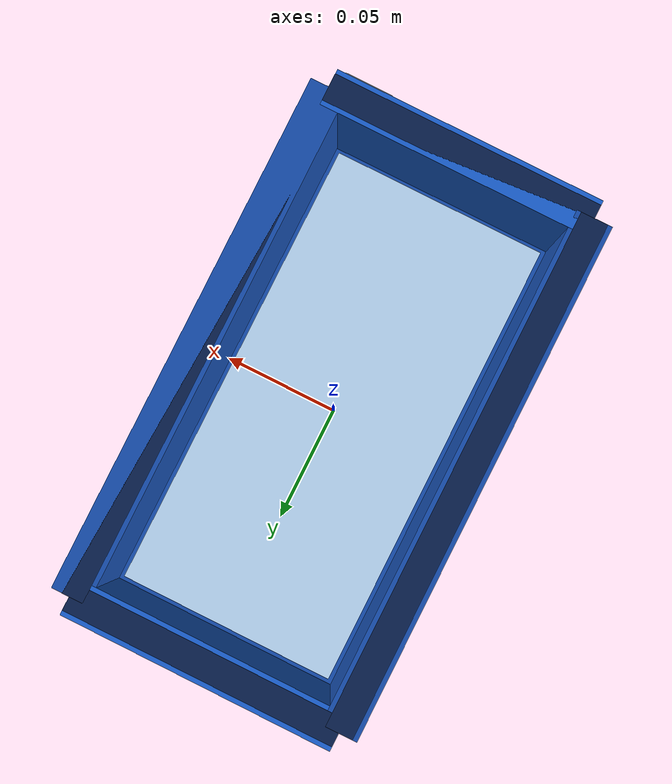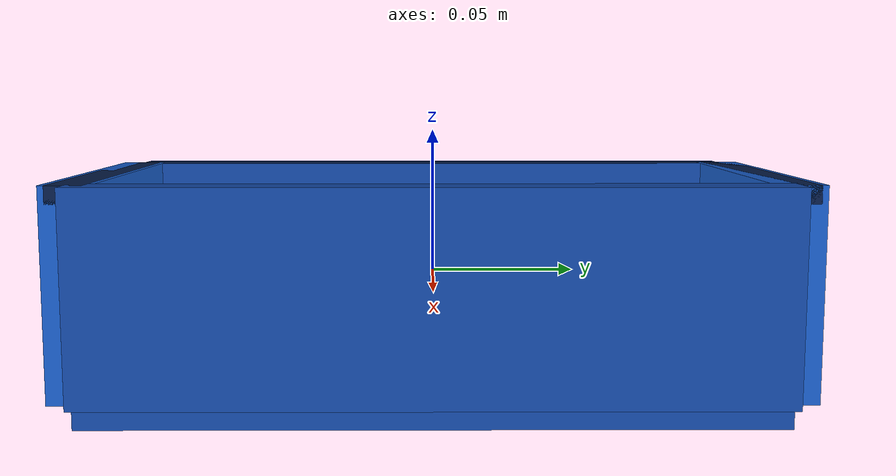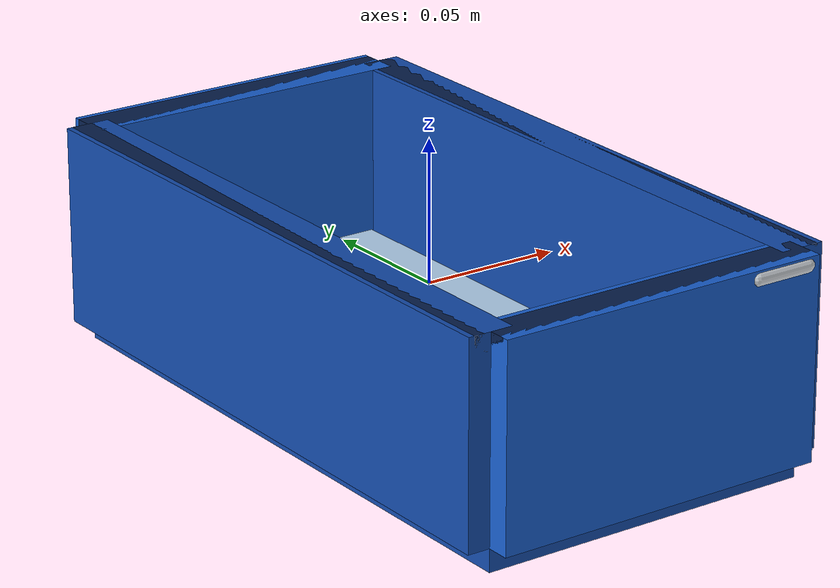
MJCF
<mujoco model="vla82_vla82_051__aux_05">
  <compiler angle="radian"/>
  <asset>
    <texture name="source_texture" type="2d" file="source_texture.png"/>
    <material name="source_material" texture="source_texture" rgba="1 1 1 1"/>
  </asset>
  <default>
    <default class="visual"><geom contype="0" conaffinity="0" group="1"/></default>
    <default class="collision"><geom contype="1" conaffinity="1" group="0" density="300" friction="0.82 0.008 0.0003" solref="0.02 1" solimp="0.9 0.95 0.001"/></default>
    <default class="region"><geom contype="0" conaffinity="0" group="1" rgba="0 1 0 0" mass="0"/></default>
  </default>
  <worldbody><body><body name="object">
    <geom name="visual_bottom" class="visual" type="box" pos="0 0 -0.035000" size="0.060000 0.115000 0.008" rgba="0.08 0.30 0.68 1"/>
    <geom name="visual_front" class="visual" type="box" pos="0 -0.115000 0" size="0.060000 0.008 0.035000" rgba="0.10 0.38 0.82 1"/>
    <geom name="visual_back" class="visual" type="box" pos="0 0.115000 0" size="0.060000 0.008 0.035000" rgba="0.10 0.38 0.82 1"/>
    <geom name="visual_left" class="visual" type="box" pos="-0.060000 0 0" size="0.008 0.115000 0.035000" rgba="0.08 0.30 0.68 1"/>
    <geom name="visual_right" class="visual" type="box" pos="0.060000 0 0" size="0.008 0.115000 0.035000" rgba="0.08 0.30 0.68 1"/>
    <geom name="case_lining" class="visual" mass="0" type="box" pos="0 0 -0.026000" size="0.050000 0.105000 0.002" rgba="0.72 0.84 0.96 1"/>
    <geom name="case_rim_front" class="visual" mass="0" type="box" pos="0 -0.115000 0.032000" size="0.060000 0.006 0.003" rgba="0.03 0.12 0.30 1"/>
    <geom name="case_rim_back" class="visual" mass="0" type="box" pos="0 0.115000 0.032000" size="0.060000 0.006 0.003" rgba="0.03 0.12 0.30 1"/>
    <geom name="case_rim_left" class="visual" mass="0" type="box" pos="-0.060000 0 0.032000" size="0.006 0.115000 0.003" rgba="0.03 0.12 0.30 1"/>
    <geom name="case_rim_right" class="visual" mass="0" type="box" pos="0.060000 0 0.032000" size="0.006 0.115000 0.003" rgba="0.03 0.12 0.30 1"/>
    <geom name="case_zip_pull" class="visual" mass="0" type="capsule" pos="0.046000 -0.121000 0.032000" size="0.003 0.010" euler="0 1.5707963 0" rgba="0.82 0.84 0.86 1"/>
    <geom name="collision_bottom" class="collision" type="box" pos="0 0 -0.035000" size="0.060000 0.115000 0.008"/>
    <geom name="collision_front" class="collision" type="box" pos="0 -0.115000 0" size="0.060000 0.008 0.035000"/>
    <geom name="collision_back" class="collision" type="box" pos="0 0.115000 0" size="0.060000 0.008 0.035000"/>
    <geom name="collision_left" class="collision" type="box" pos="-0.060000 0 0" size="0.008 0.115000 0.035000"/>
    <geom name="collision_right" class="collision" type="box" pos="0.060000 0 0" size="0.008 0.115000 0.035000"/>
    <geom name="reg_bbox" class="region" type="box" pos="0 0 0" size="0.060000 0.115000 0.035000"/>
  </body></body></worldbody>
  <actuator/>
</mujoco>
